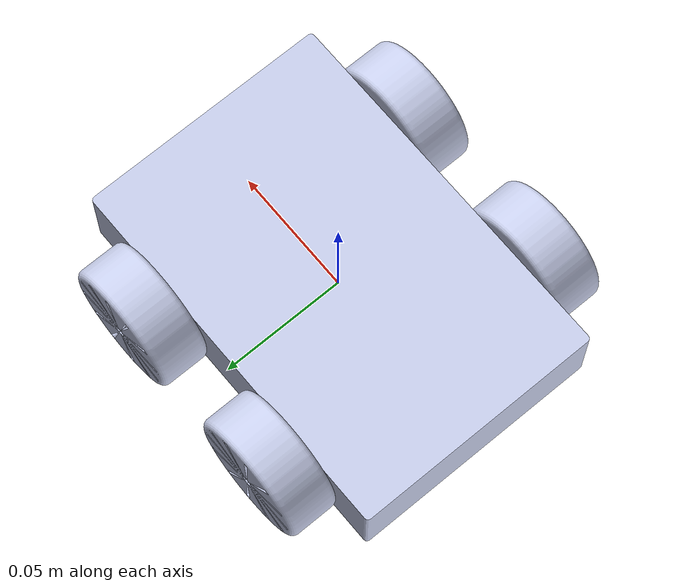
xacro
<?xml version="1.0"?>
<robot name="robot_urdf" xmlns:xacro="http://ros.org/wiki/xacro">

  <xacro:property name="default_color" value="0.79216 0.81961 0.93333 1"/>

  <!-- Macro for wheel link -->
  <xacro:macro name="wheel_link" params="name mesh origin mass ixx ixy ixz iyy iyz izz">
    <link name="${name}">
      <inertial>
        <origin xyz="${origin}" rpy="0 0 0"/>
        <mass value="${mass}"/>
        <inertia ixx="${ixx}" ixy="${ixy}" ixz="${ixz}"
                 iyy="${iyy}" iyz="${iyz}" izz="${izz}"/>
      </inertial>
      <visual>
        <origin xyz="0 0 0" rpy="0 0 0"/>
        <geometry>
          <mesh filename="package://wall-e/meshes/${mesh}"/>
        </geometry>
        <material name="">
          <color rgba="${default_color}"/>
        </material>
      </visual>
      <collision>
        <origin xyz="0 0 0" rpy="0 0 0"/>
        <geometry>
          <mesh filename="package://wall-e/meshes/${mesh}"/>
        </geometry>
      </collision>
    </link>
  </xacro:macro>

  <!-- Base Link -->
  <link name="base_link">
    <inertial>
      <origin xyz="1.7528E-07 4.3368E-18 -3.1564E-07" rpy="0 0 0"/>
      <mass value="0.45937"/>
      <inertia ixx="0.00043611" ixy="-4.0945E-20" ixz="-2.1354E-20"
               iyy="0.00088919" iyz="1.6285E-22" izz="0.0012573"/>
    </inertial>
    <visual>
      <origin xyz="0 0 0" rpy="0 0 0"/>
      <geometry>
        <mesh filename="package://wall-e/meshes/base_link.STL"/>
      </geometry>
      <material name="">
        <color rgba="${default_color}"/>
      </material>
    </visual>
    <collision>
      <origin xyz="0 0 0" rpy="0 0 0"/>
      <geometry>
        <mesh filename="package://wall-e/meshes/base_link.STL"/>
      </geometry>
    </collision>
  </link>

  <!-- Wheel Links -->
  <xacro:wheel_link name="lf_link" mesh="lf_link.STL"
                    origin="-1.1319E-06 0.00085532 2.8562E-06"
                    mass="0.033011"
                    ixx="6.6258E-06" ixy="3.0204E-10" ixz="-5.6054E-12"
                    iyy="1.1308E-05" iyz="-7.6739E-10" izz="6.6258E-06"/>
  <xacro:wheel_link name="lb_link" mesh="lb_link.STL"
                    origin="2.51E-06 0.00085532 1.7718E-06"
                    mass="0.033011"
                    ixx="6.6258E-06" ixy="-6.7485E-10" ixz="7.8844E-12"
                    iyy="1.1308E-05" iyz="-4.7403E-10" izz="6.6258E-06"/>
  <xacro:wheel_link name="rf_link" mesh="rf_link.STL"
                    origin="-1.8104E-06 -0.00085532 2.4825E-06"
                    mass="0.033011"
                    ixx="6.6258E-06" ixy="-4.8757E-10" ixz="-8.202E-12"
                    iyy="1.1308E-05" iyz="6.6517E-10" izz="6.6258E-06"/>
  <xacro:wheel_link name="rb_link" mesh="rb_link.STL"
                    origin="-2.7058E-06 -0.00085532 -1.4556E-06"
                    mass="0.033011"
                    ixx="6.6258E-06" ixy="-7.2536E-10" ixz="7.3893E-12"
                    iyy="1.1308E-05" iyz="-3.9246E-10" izz="6.6258E-06"/>

  <!-- Joints -->
  <joint name="lf_joint" type="continuous">
    <origin xyz="0.035 0.06 0" rpy="0 0 0"/>
    <parent link="base_link"/>
    <child link="lf_link"/>
    <axis xyz="0 1 0"/>
  </joint>

  <joint name="lb_joint" type="continuous">
    <origin xyz="-0.035 0.06 0" rpy="0 0 0"/>
    <parent link="base_link"/>
    <child link="lb_link"/>
    <axis xyz="0 1 0"/>
  </joint>

  <joint name="rf_joint" type="continuous">
    <origin xyz="0.035 -0.06 0" rpy="0 0 0"/>
    <parent link="base_link"/>
    <child link="rf_link"/>
    <axis xyz="0 1 0"/>
  </joint>

  <joint name="rb_joint" type="continuous">
    <origin xyz="-0.035 -0.06 0" rpy="0 0 0"/>
    <parent link="base_link"/>
    <child link="rb_link"/>
    <axis xyz="0 1 0"/>
  </joint>

  <plugin filename="diff_drive_controller" name="gz::sim::systems::DiffDrive">
    <left_joint>lf_joint</left_joint>
    <right_joint>rf_joint</right_joint>

    <wheel_separation>0.12</wheel_separation>
    <wheel_radius>0.1</wheel_radius>

    <max_linear_acceleration>0.5</max_linear_acceleration>

    <topic>cmd_vel</topic>
    <odom_topic>odom</odom_topic>
    <frame_id>odom</frame_id>
    <child_frame_id>base_link</child_frame_id>
    <odom_publisher_frequency>30</odom_publisher_frequency>
    <tf_topic>/tf</tf_topic>
  </plugin>

</robot>
